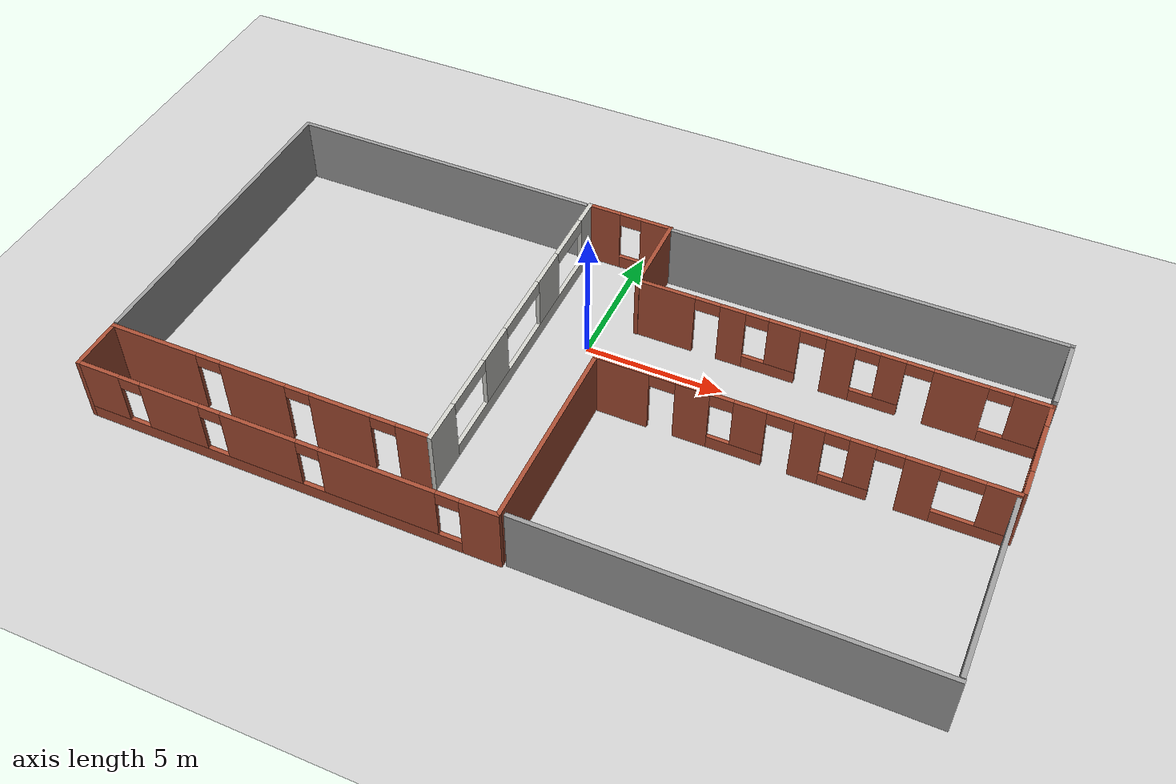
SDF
<sdf version="1.6">
 <world name="default">
  <light name="sun" type="directional">
   <pose>0 0 10 0 -0 0</pose>
   <diffuse>0.8 0.8 0.8 1</diffuse>
   <specular>0.1 0.1 0.1 1</specular>
   <attenuation>
    <range>1000</range>
    <constant>0.9</constant>
    <linear>0.01</linear>
    <quadratic>0.001</quadratic>
   </attenuation>
   <direction>-0.5 0.5 -1</direction>
  </light>
  <model name="ground_plane">
   <static>1</static>
   <link name="link">
    <collision name="collision">
     <geometry><plane><normal>0 0 1</normal><size>100 100</size></plane></geometry>
     <surface><friction><ode><mu>100</mu><mu2>50</mu2></ode></friction></surface>
    </collision>
    <visual name="visual">
     <cast_shadows>0</cast_shadows>
     <geometry><plane><normal>0 0 1</normal><size>100 100</size></plane></geometry>
     <material>
      <script><uri>file://media/materials/scripts/gazebo.material</uri><name>Gazebo/Grey</name></script>
     </material>
    </visual>
   </link>
  </model>
  <gravity>0 0 -9.8</gravity>
  <magnetic_field>6e-06 2.3e-05 -4.2e-05</magnetic_field>
  <atmosphere type="adiabatic"/>
  <physics name="default_physics" default="0" type="ode">
   <max_step_size>0.001</max_step_size>
   <real_time_factor>1</real_time_factor>
   <real_time_update_rate>1000</real_time_update_rate>
  </physics>
  <scene><ambient>0.4 0.4 0.4 1</ambient><background>0.7 0.7 0.7 1</background><shadows>1</shadows></scene>
  <spherical_coordinates>
   <surface_model>EARTH_WGS84</surface_model>
   <latitude_deg>0</latitude_deg>
   <longitude_deg>0</longitude_deg>
   <elevation>0</elevation>
   <heading_deg>0</heading_deg>
  </spherical_coordinates>
  <model name="zoulang1.0">
   <pose>0.805899 -2.55323 0 0 -0 0</pose>
   <link name="Wall_13">
    <collision name="Wall_13_Collision">
     <geometry><box><size>7.25 0.15 2.5</size></box></geometry>
     <pose>0 0 1.25 0 -0 0</pose>
    </collision>
    <visual name="Wall_13_Visual">
     <pose>0 0 1.25 0 -0 0</pose>
     <geometry><box><size>7.25 0.15 2.5</size></box></geometry>
     <material>
      <script><uri>file://media/materials/scripts/gazebo.material</uri><name>Gazebo/Bricks</name></script>
      <ambient>1 1 1 1</ambient>
     </material>
    </visual>
    <pose>0.563435 -3.425 0 0 0 -1.5708</pose>
   </link>
   <link name="Wall_14">
    <pose>-6.98657 -6.975 0 0 -0 3.14159</pose>
    <visual name="Wall_14_Visual_0">
     <pose>-6.94822 0 1.25 0 -0 0</pose>
     <geometry><box><size>1.35357 0.15 2.5</size></box></geometry>
     <material>
      <script><uri>file://media/materials/scripts/gazebo.material</uri><name>Gazebo/Bricks</name></script>
      <ambient>0.996078 0.47451 0.0196078 1</ambient>
     </material>
    </visual>
    <collision name="Wall_14_Collision_0">
     <geometry><box><size>1.35357 0.15 2.5</size></box></geometry>
     <pose>-6.94822 0 1.25 0 -0 0</pose>
    </collision>
    <visual name="Wall_14_Visual_1">
     <pose>0.676784 0 0.25 0 -0 0</pose>
     <geometry><box><size>13.8964 0.15 0.5</size></box></geometry>
     <material>
      <script><uri>file://media/materials/scripts/gazebo.material</uri><name>Gazebo/Bricks</name></script>
      <ambient>0.996078 0.47451 0.0196078 1</ambient>
     </material>
    </visual>
    <collision name="Wall_14_Collision_1">
     <geometry><box><size>13.8964 0.15 0.5</size></box></geometry>
     <pose>0.676784 0 0.25 0 -0 0</pose>
    </collision>
    <visual name="Wall_14_Visual_2">
     <pose>-3.4441 0 1.5 0 -0 0</pose>
     <geometry><box><size>4.05467 0.15 2</size></box></geometry>
     <material>
      <script><uri>file://media/materials/scripts/gazebo.material</uri><name>Gazebo/Bricks</name></script>
      <ambient>0.996078 0.47451 0.0196078 1</ambient>
     </material>
    </visual>
    <collision name="Wall_14_Collision_2">
     <geometry><box><size>4.05467 0.15 2</size></box></geometry>
     <pose>-3.4441 0 1.5 0 -0 0</pose>
    </collision>
    <visual name="Wall_14_Visual_3">
     <pose>0.763283 0 1.5 0 -0 0</pose>
     <geometry><box><size>2.76009 0.15 2</size></box></geometry>
     <material>
      <script><uri>file://media/materials/scripts/gazebo.material</uri><name>Gazebo/Bricks</name></script>
      <ambient>0.996078 0.47451 0.0196078 1</ambient>
     </material>
    </visual>
    <collision name="Wall_14_Collision_3">
     <geometry><box><size>2.76009 0.15 2</size></box></geometry>
     <pose>0.763283 0 1.5 0 -0 0</pose>
    </collision>
    <visual name="Wall_14_Visual_4">
     <pose>4.06041 0 1.5 0 -0 0</pose>
     <geometry><box><size>2.23417 0.15 2</size></box></geometry>
     <material>
      <script><uri>file://media/materials/scripts/gazebo.material</uri><name>Gazebo/Bricks</name></script>
      <ambient>0.996078 0.47451 0.0196078 1</ambient>
     </material>
    </visual>
    <collision name="Wall_14_Collision_4">
     <geometry><box><size>2.23417 0.15 2</size></box></geometry>
     <pose>4.06041 0 1.5 0 -0 0</pose>
    </collision>
    <visual name="Wall_14_Visual_5">
     <pose>6.80125 0 1.5 0 -0 0</pose>
     <geometry><box><size>1.6475 0.15 2</size></box></geometry>
     <material>
      <script><uri>file://media/materials/scripts/gazebo.material</uri><name>Gazebo/Bricks</name></script>
      <ambient>0.996078 0.47451 0.0196078 1</ambient>
     </material>
    </visual>
    <collision name="Wall_14_Collision_5">
     <geometry><box><size>1.6475 0.15 2</size></box></geometry>
     <pose>6.80125 0 1.5 0 -0 0</pose>
    </collision>
    <visual name="Wall_14_Visual_6">
     <pose>-5.87143 0 2.25 0 -0 0</pose>
     <geometry><box><size>0.8 0.15 0.5</size></box></geometry>
     <material>
      <script><uri>file://media/materials/scripts/gazebo.material</uri><name>Gazebo/Bricks</name></script>
      <ambient>0.996078 0.47451 0.0196078 1</ambient>
     </material>
    </visual>
    <collision name="Wall_14_Collision_6">
     <geometry><box><size>0.8 0.15 0.5</size></box></geometry>
     <pose>-5.87143 0 2.25 0 -0 0</pose>
    </collision>
    <visual name="Wall_14_Visual_7">
     <pose>-1.01676 0 2.25 0 -0 0</pose>
     <geometry><box><size>0.8 0.15 0.5</size></box></geometry>
     <material>
      <script><uri>file://media/materials/scripts/gazebo.material</uri><name>Gazebo/Bricks</name></script>
      <ambient>0.996078 0.47451 0.0196078 1</ambient>
     </material>
    </visual>
    <collision name="Wall_14_Collision_7">
     <geometry><box><size>0.8 0.15 0.5</size></box></geometry>
     <pose>-1.01676 0 2.25 0 -0 0</pose>
    </collision>
    <visual name="Wall_14_Visual_8">
     <pose>2.54333 0 2.25 0 -0 0</pose>
     <geometry><box><size>0.8 0.15 0.5</size></box></geometry>
     <material>
      <script><uri>file://media/materials/scripts/gazebo.material</uri><name>Gazebo/Bricks</name></script>
      <ambient>0.996078 0.47451 0.0196078 1</ambient>
     </material>
    </visual>
    <collision name="Wall_14_Collision_8">
     <geometry><box><size>0.8 0.15 0.5</size></box></geometry>
     <pose>2.54333 0 2.25 0 -0 0</pose>
    </collision>
    <visual name="Wall_14_Visual_9">
     <pose>5.5775 0 2.25 0 -0 0</pose>
     <geometry><box><size>0.8 0.15 0.5</size></box></geometry>
     <material>
      <script><uri>file://media/materials/scripts/gazebo.material</uri><name>Gazebo/Bricks</name></script>
      <ambient>0.996078 0.47451 0.0196078 1</ambient>
     </material>
    </visual>
    <collision name="Wall_14_Collision_9">
     <geometry><box><size>0.8 0.15 0.5</size></box></geometry>
     <pose>5.5775 0 2.25 0 -0 0</pose>
    </collision>
   </link>
   <link name="Wall_15">
    <collision name="Wall_15_Collision">
     <geometry><box><size>2 0.15 2.5</size></box></geometry>
     <pose>0 0 1.25 0 -0 0</pose>
    </collision>
    <visual name="Wall_15_Visual">
     <pose>0 0 1.25 0 -0 0</pose>
     <geometry><box><size>2 0.15 2.5</size></box></geometry>
     <material>
      <script><uri>file://media/materials/scripts/gazebo.material</uri><name>Gazebo/Bricks</name></script>
      <ambient>1 1 1 1</ambient>
     </material>
    </visual>
    <pose>-14.5366 -6.05 0 0 -0 1.5708</pose>
   </link>
   <link name="Wall_16">
    <pose>-8.61157 -5.125 0 0 -0 0</pose>
    <visual name="Wall_16_Visual_0">
     <pose>-4.33145 0 1.25 0 -0 0</pose>
     <geometry><box><size>3.33709 0.15 2.5</size></box></geometry>
     <material>
      <script><uri>file://media/materials/scripts/gazebo.material</uri><name>Gazebo/Bricks</name></script>
      <ambient>1 1 1 1</ambient>
     </material>
    </visual>
    <collision name="Wall_16_Collision_0">
     <geometry><box><size>3.33709 0.15 2.5</size></box></geometry>
     <pose>-4.33145 0 1.25 0 -0 0</pose>
    </collision>
    <visual name="Wall_16_Visual_1">
     <pose>-0.534 0 1.25 0 -0 0</pose>
     <geometry><box><size>2.45781 0.15 2.5</size></box></geometry>
     <material>
      <script><uri>file://media/materials/scripts/gazebo.material</uri><name>Gazebo/Bricks</name></script>
      <ambient>1 1 1 1</ambient>
     </material>
    </visual>
    <collision name="Wall_16_Collision_1">
     <geometry><box><size>2.45781 0.15 2.5</size></box></geometry>
     <pose>-0.534 0 1.25 0 -0 0</pose>
    </collision>
    <visual name="Wall_16_Visual_2">
     <pose>2.70245 0 1.25 0 -0 0</pose>
     <geometry><box><size>2.21508 0.15 2.5</size></box></geometry>
     <material>
      <script><uri>file://media/materials/scripts/gazebo.material</uri><name>Gazebo/Bricks</name></script>
      <ambient>1 1 1 1</ambient>
     </material>
    </visual>
    <collision name="Wall_16_Collision_2">
     <geometry><box><size>2.21508 0.15 2.5</size></box></geometry>
     <pose>2.70245 0 1.25 0 -0 0</pose>
    </collision>
    <visual name="Wall_16_Visual_3">
     <pose>5.35499 0 1.25 0 -0 0</pose>
     <geometry><box><size>1.29001 0.15 2.5</size></box></geometry>
     <material>
      <script><uri>file://media/materials/scripts/gazebo.material</uri><name>Gazebo/Bricks</name></script>
      <ambient>1 1 1 1</ambient>
     </material>
    </visual>
    <collision name="Wall_16_Collision_3">
     <geometry><box><size>1.29001 0.15 2.5</size></box></geometry>
     <pose>5.35499 0 1.25 0 -0 0</pose>
    </collision>
    <visual name="Wall_16_Visual_4">
     <pose>-2.21291 0 2.25 0 -0 0</pose>
     <geometry><box><size>0.9 0.15 0.5</size></box></geometry>
     <material>
      <script><uri>file://media/materials/scripts/gazebo.material</uri><name>Gazebo/Bricks</name></script>
      <ambient>1 1 1 1</ambient>
     </material>
    </visual>
    <collision name="Wall_16_Collision_4">
     <geometry><box><size>0.9 0.15 0.5</size></box></geometry>
     <pose>-2.21291 0 2.25 0 -0 0</pose>
    </collision>
    <visual name="Wall_16_Visual_5">
     <pose>1.14491 0 2.25 0 -0 0</pose>
     <geometry><box><size>0.9 0.15 0.5</size></box></geometry>
     <material>
      <script><uri>file://media/materials/scripts/gazebo.material</uri><name>Gazebo/Bricks</name></script>
      <ambient>1 1 1 1</ambient>
     </material>
    </visual>
    <collision name="Wall_16_Collision_5">
     <geometry><box><size>0.9 0.15 0.5</size></box></geometry>
     <pose>1.14491 0 2.25 0 -0 0</pose>
    </collision>
    <visual name="Wall_16_Visual_6">
     <pose>4.25999 0 2.25 0 -0 0</pose>
     <geometry><box><size>0.9 0.15 0.5</size></box></geometry>
     <material>
      <script><uri>file://media/materials/scripts/gazebo.material</uri><name>Gazebo/Bricks</name></script>
      <ambient>1 1 1 1</ambient>
     </material>
    </visual>
    <collision name="Wall_16_Collision_6">
     <geometry><box><size>0.9 0.15 0.5</size></box></geometry>
     <pose>4.25999 0 2.25 0 -0 0</pose>
    </collision>
   </link>
   <link name="Wall_17">
    <pose>-2.68656 0.925 0 0 -0 1.5708</pose>
    <visual name="Wall_17_Visual_0">
     <pose>-5.33907 0 1.25 0 -0 0</pose>
     <geometry><box><size>1.57187 0.15 2.5</size></box></geometry>
     <material>
      <script><uri>file://media/materials/scripts/gazebo.material</uri><name>Gazebo/CeilingTiled</name></script>
      <ambient>1 1 1 1</ambient>
     </material>
    </visual>
    <collision name="Wall_17_Collision_0">
     <geometry><box><size>1.57187 0.15 2.5</size></box></geometry>
     <pose>-5.33907 0 1.25 0 -0 0</pose>
    </collision>
    <visual name="Wall_17_Visual_1">
     <pose>0.785934 0 0.25 0 -0 0</pose>
     <geometry><box><size>10.6781 0.15 0.5</size></box></geometry>
     <material>
      <script><uri>file://media/materials/scripts/gazebo.material</uri><name>Gazebo/CeilingTiled</name></script>
      <ambient>1 1 1 1</ambient>
     </material>
    </visual>
    <collision name="Wall_17_Collision_1">
     <geometry><box><size>10.6781 0.15 0.5</size></box></geometry>
     <pose>0.785934 0 0.25 0 -0 0</pose>
    </collision>
    <visual name="Wall_17_Visual_2">
     <pose>-1.65476 0 1.5 0 -0 0</pose>
     <geometry><box><size>1.60674 0.15 2</size></box></geometry>
     <material>
      <script><uri>file://media/materials/scripts/gazebo.material</uri><name>Gazebo/CeilingTiled</name></script>
      <ambient>1 1 1 1</ambient>
     </material>
    </visual>
    <collision name="Wall_17_Collision_2">
     <geometry><box><size>1.60674 0.15 2</size></box></geometry>
     <pose>-1.65476 0 1.5 0 -0 0</pose>
    </collision>
    <visual name="Wall_17_Visual_3">
     <pose>2.39079 0 1.5 0 -0 0</pose>
     <geometry><box><size>1.56637 0.15 2</size></box></geometry>
     <material>
      <script><uri>file://media/materials/scripts/gazebo.material</uri><name>Gazebo/CeilingTiled</name></script>
      <ambient>1 1 1 1</ambient>
     </material>
    </visual>
    <collision name="Wall_17_Collision_3">
     <geometry><box><size>1.56637 0.15 2</size></box></geometry>
     <pose>2.39079 0 1.5 0 -0 0</pose>
    </collision>
    <visual name="Wall_17_Visual_4">
     <pose>5.61599 0 1.5 0 -0 0</pose>
     <geometry><box><size>1.01803 0.15 2</size></box></geometry>
     <material>
      <script><uri>file://media/materials/scripts/gazebo.material</uri><name>Gazebo/CeilingTiled</name></script>
      <ambient>1 1 1 1</ambient>
     </material>
    </visual>
    <collision name="Wall_17_Collision_4">
     <geometry><box><size>1.01803 0.15 2</size></box></geometry>
     <pose>5.61599 0 1.5 0 -0 0</pose>
    </collision>
    <visual name="Wall_17_Visual_5">
     <pose>-3.50563 0 2.25 0 -0 0</pose>
     <geometry><box><size>2.095 0.15 0.5</size></box></geometry>
     <material>
      <script><uri>file://media/materials/scripts/gazebo.material</uri><name>Gazebo/CeilingTiled</name></script>
      <ambient>1 1 1 1</ambient>
     </material>
    </visual>
    <collision name="Wall_17_Collision_5">
     <geometry><box><size>2.095 0.15 0.5</size></box></geometry>
     <pose>-3.50563 0 2.25 0 -0 0</pose>
    </collision>
    <visual name="Wall_17_Visual_6">
     <pose>0.378104 0 2.25 0 -0 0</pose>
     <geometry><box><size>2.459 0.15 0.5</size></box></geometry>
     <material>
      <script><uri>file://media/materials/scripts/gazebo.material</uri><name>Gazebo/CeilingTiled</name></script>
      <ambient>1 1 1 1</ambient>
     </material>
    </visual>
    <collision name="Wall_17_Collision_6">
     <geometry><box><size>2.459 0.15 0.5</size></box></geometry>
     <pose>0.378104 0 2.25 0 -0 0</pose>
    </collision>
    <visual name="Wall_17_Visual_7">
     <pose>4.14047 0 2.25 0 -0 0</pose>
     <geometry><box><size>1.933 0.15 0.5</size></box></geometry>
     <material>
      <script><uri>file://media/materials/scripts/gazebo.material</uri><name>Gazebo/CeilingTiled</name></script>
      <ambient>1 1 1 1</ambient>
     </material>
    </visual>
    <collision name="Wall_17_Collision_7">
     <geometry><box><size>1.933 0.15 0.5</size></box></geometry>
     <pose>4.14047 0 2.25 0 -0 0</pose>
    </collision>
   </link>
   <link name="Wall_18">
    <pose>-1.13657 6.975 0 0 -0 0</pose>
    <visual name="Wall_18_Visual_0">
     <pose>-0.990487 0 1.25 0 -0 0</pose>
     <geometry><box><size>1.26903 0.15 2.5</size></box></geometry>
     <material>
      <script><uri>file://media/materials/scripts/gazebo.material</uri><name>Gazebo/Bricks</name></script>
      <ambient>1 1 1 1</ambient>
     </material>
    </visual>
    <collision name="Wall_18_Collision_0">
     <geometry><box><size>1.26903 0.15 2.5</size></box></geometry>
     <pose>-0.990487 0 1.25 0 -0 0</pose>
    </collision>
    <visual name="Wall_18_Visual_1">
     <pose>0.634513 0 0.25 0 -0 0</pose>
     <geometry><box><size>1.98097 0.15 0.5</size></box></geometry>
     <material>
      <script><uri>file://media/materials/scripts/gazebo.material</uri><name>Gazebo/Bricks</name></script>
      <ambient>1 1 1 1</ambient>
     </material>
    </visual>
    <collision name="Wall_18_Collision_1">
     <geometry><box><size>1.98097 0.15 0.5</size></box></geometry>
     <pose>0.634513 0 0.25 0 -0 0</pose>
    </collision>
    <visual name="Wall_18_Visual_2">
     <pose>1.03451 0 1.5 0 -0 0</pose>
     <geometry><box><size>1.18097 0.15 2</size></box></geometry>
     <material>
      <script><uri>file://media/materials/scripts/gazebo.material</uri><name>Gazebo/Bricks</name></script>
      <ambient>1 1 1 1</ambient>
     </material>
    </visual>
    <collision name="Wall_18_Collision_2">
     <geometry><box><size>1.18097 0.15 2</size></box></geometry>
     <pose>1.03451 0 1.5 0 -0 0</pose>
    </collision>
    <visual name="Wall_18_Visual_3">
     <pose>0.044026 0 2.25 0 -0 0</pose>
     <geometry><box><size>0.8 0.15 0.5</size></box></geometry>
     <material>
      <script><uri>file://media/materials/scripts/gazebo.material</uri><name>Gazebo/Bricks</name></script>
      <ambient>1 1 1 1</ambient>
     </material>
    </visual>
    <collision name="Wall_18_Collision_3">
     <geometry><box><size>0.8 0.15 0.5</size></box></geometry>
     <pose>0.044026 0 2.25 0 -0 0</pose>
    </collision>
   </link>
   <link name="Wall_19">
    <collision name="Wall_19_Collision">
     <geometry><box><size>3.11565 0.15 2.5</size></box></geometry>
     <pose>0 0 1.25 0 -0 0</pose>
    </collision>
    <visual name="Wall_19_Visual">
     <pose>0 0 1.25 0 -0 0</pose>
     <geometry><box><size>3.11565 0.15 2.5</size></box></geometry>
     <material>
      <script><uri>file://media/materials/scripts/gazebo.material</uri><name>Gazebo/Bricks</name></script>
      <ambient>1 1 1 1</ambient>
     </material>
    </visual>
    <pose>0.413435 5.49217 0 0 0 -1.5708</pose>
   </link>
   <link name="Wall_20">
    <pose>7.48657 4.03248 0 0 -0 0</pose>
    <visual name="Wall_20_Visual_0">
     <pose>-6.04901 0 1.25 0 -0 0</pose>
     <geometry><box><size>2.15197 0.15 2.5</size></box></geometry>
     <material>
      <script><uri>file://media/materials/scripts/gazebo.material</uri><name>Gazebo/Bricks</name></script>
      <ambient>1 1 1 1</ambient>
     </material>
    </visual>
    <collision name="Wall_20_Collision_0">
     <geometry><box><size>2.15197 0.15 2.5</size></box></geometry>
     <pose>-6.04901 0 1.25 0 -0 0</pose>
    </collision>
    <visual name="Wall_20_Visual_1">
     <pose>-3.61407 0 1.25 0 -0 0</pose>
     <geometry><box><size>0.917909 0.15 2.5</size></box></geometry>
     <material>
      <script><uri>file://media/materials/scripts/gazebo.material</uri><name>Gazebo/Bricks</name></script>
      <ambient>1 1 1 1</ambient>
     </material>
    </visual>
    <collision name="Wall_20_Collision_1">
     <geometry><box><size>0.917909 0.15 2.5</size></box></geometry>
     <pose>-3.61407 0 1.25 0 -0 0</pose>
    </collision>
    <visual name="Wall_20_Visual_2">
     <pose>0.154363 0 1.25 0 -0 0</pose>
     <geometry><box><size>1.01096 0.15 2.5</size></box></geometry>
     <material>
      <script><uri>file://media/materials/scripts/gazebo.material</uri><name>Gazebo/Bricks</name></script>
      <ambient>1 1 1 1</ambient>
     </material>
    </visual>
    <collision name="Wall_20_Collision_2">
     <geometry><box><size>1.01096 0.15 2.5</size></box></geometry>
     <pose>0.154363 0 1.25 0 -0 0</pose>
    </collision>
    <visual name="Wall_20_Visual_3">
     <pose>4.13216 0 1.25 0 -0 0</pose>
     <geometry><box><size>1.80186 0.15 2.5</size></box></geometry>
     <material>
      <script><uri>file://media/materials/scripts/gazebo.material</uri><name>Gazebo/Bricks</name></script>
      <ambient>1 1 1 1</ambient>
     </material>
    </visual>
    <collision name="Wall_20_Collision_3">
     <geometry><box><size>1.80186 0.15 2.5</size></box></geometry>
     <pose>4.13216 0 1.25 0 -0 0</pose>
    </collision>
    <visual name="Wall_20_Visual_4">
     <pose>-2.20312 0 0.25 0 -0 0</pose>
     <geometry><box><size>1.904 0.15 0.5</size></box></geometry>
     <material>
      <script><uri>file://media/materials/scripts/gazebo.material</uri><name>Gazebo/Bricks</name></script>
      <ambient>1 1 1 1</ambient>
     </material>
    </visual>
    <collision name="Wall_20_Collision_4">
     <geometry><box><size>1.904 0.15 0.5</size></box></geometry>
     <pose>-2.20312 0 0.25 0 -0 0</pose>
    </collision>
    <visual name="Wall_20_Visual_5">
     <pose>1.49553 0 0.25 0 -0 0</pose>
     <geometry><box><size>1.67138 0.15 0.5</size></box></geometry>
     <material>
      <script><uri>file://media/materials/scripts/gazebo.material</uri><name>Gazebo/Bricks</name></script>
      <ambient>1 1 1 1</ambient>
     </material>
    </visual>
    <collision name="Wall_20_Collision_5">
     <geometry><box><size>1.67138 0.15 0.5</size></box></geometry>
     <pose>1.49553 0 0.25 0 -0 0</pose>
    </collision>
    <visual name="Wall_20_Visual_6">
     <pose>6.07904 0 0.25 0 -0 0</pose>
     <geometry><box><size>2.09191 0.15 0.5</size></box></geometry>
     <material>
      <script><uri>file://media/materials/scripts/gazebo.material</uri><name>Gazebo/Bricks</name></script>
      <ambient>1 1 1 1</ambient>
     </material>
    </visual>
    <collision name="Wall_20_Collision_6">
     <geometry><box><size>2.09191 0.15 0.5</size></box></geometry>
     <pose>6.07904 0 0.25 0 -0 0</pose>
    </collision>
    <visual name="Wall_20_Visual_7">
     <pose>-1.80312 0 1.5 0 -0 0</pose>
     <geometry><box><size>1.104 0.15 2</size></box></geometry>
     <material>
      <script><uri>file://media/materials/scripts/gazebo.material</uri><name>Gazebo/Bricks</name></script>
      <ambient>1 1 1 1</ambient>
     </material>
    </visual>
    <collision name="Wall_20_Collision_7">
     <geometry><box><size>1.104 0.15 2</size></box></geometry>
     <pose>-1.80312 0 1.5 0 -0 0</pose>
    </collision>
    <visual name="Wall_20_Visual_8">
     <pose>-1.80312 0 1.5 0 -0 0</pose>
     <geometry><box><size>1.104 0.15 2</size></box></geometry>
     <material>
      <script><uri>file://media/materials/scripts/gazebo.material</uri><name>Gazebo/Bricks</name></script>
      <ambient>1 1 1 1</ambient>
     </material>
    </visual>
    <collision name="Wall_20_Collision_8">
     <geometry><box><size>1.104 0.15 2</size></box></geometry>
     <pose>-1.80312 0 1.5 0 -0 0</pose>
    </collision>
    <visual name="Wall_20_Visual_9">
     <pose>1.89553 0 1.5 0 -0 0</pose>
     <geometry><box><size>0.871385 0.15 2</size></box></geometry>
     <material>
      <script><uri>file://media/materials/scripts/gazebo.material</uri><name>Gazebo/Bricks</name></script>
      <ambient>1 1 1 1</ambient>
     </material>
    </visual>
    <collision name="Wall_20_Collision_9">
     <geometry><box><size>0.871385 0.15 2</size></box></geometry>
     <pose>1.89553 0 1.5 0 -0 0</pose>
    </collision>
    <visual name="Wall_20_Visual_10">
     <pose>1.89553 0 1.5 0 -0 0</pose>
     <geometry><box><size>0.871385 0.15 2</size></box></geometry>
     <material>
      <script><uri>file://media/materials/scripts/gazebo.material</uri><name>Gazebo/Bricks</name></script>
      <ambient>1 1 1 1</ambient>
     </material>
    </visual>
    <collision name="Wall_20_Collision_10">
     <geometry><box><size>0.871385 0.15 2</size></box></geometry>
     <pose>1.89553 0 1.5 0 -0 0</pose>
    </collision>
    <visual name="Wall_20_Visual_11">
     <pose>6.47905 0 1.5 0 -0 0</pose>
     <geometry><box><size>1.29191 0.15 2</size></box></geometry>
     <material>
      <script><uri>file://media/materials/scripts/gazebo.material</uri><name>Gazebo/Bricks</name></script>
      <ambient>1 1 1 1</ambient>
     </material>
    </visual>
    <collision name="Wall_20_Collision_11">
     <geometry><box><size>1.29191 0.15 2</size></box></geometry>
     <pose>6.47905 0 1.5 0 -0 0</pose>
    </collision>
    <visual name="Wall_20_Visual_12">
     <pose>-4.52303 0 2.25 0 -0 0</pose>
     <geometry><box><size>0.9 0.15 0.5</size></box></geometry>
     <material>
      <script><uri>file://media/materials/scripts/gazebo.material</uri><name>Gazebo/Bricks</name></script>
      <ambient>1 1 1 1</ambient>
     </material>
    </visual>
    <collision name="Wall_20_Collision_12">
     <geometry><box><size>0.9 0.15 0.5</size></box></geometry>
     <pose>-4.52303 0 2.25 0 -0 0</pose>
    </collision>
    <visual name="Wall_20_Visual_13">
     <pose>-2.75512 0 2.25 0 -0 0</pose>
     <geometry><box><size>0.8 0.15 0.5</size></box></geometry>
     <material>
      <script><uri>file://media/materials/scripts/gazebo.material</uri><name>Gazebo/Bricks</name></script>
      <ambient>1 1 1 1</ambient>
     </material>
    </visual>
    <collision name="Wall_20_Collision_13">
     <geometry><box><size>0.8 0.15 0.5</size></box></geometry>
     <pose>-2.75512 0 2.25 0 -0 0</pose>
    </collision>
    <visual name="Wall_20_Visual_14">
     <pose>1.05984 0 2.25 0 -0 0</pose>
     <geometry><box><size>0.8 0.15 0.5</size></box></geometry>
     <material>
      <script><uri>file://media/materials/scripts/gazebo.material</uri><name>Gazebo/Bricks</name></script>
      <ambient>1 1 1 1</ambient>
     </material>
    </visual>
    <collision name="Wall_20_Collision_14">
     <geometry><box><size>0.8 0.15 0.5</size></box></geometry>
     <pose>1.05984 0 2.25 0 -0 0</pose>
    </collision>
    <visual name="Wall_20_Visual_15">
     <pose>5.43309 0 2.25 0 -0 0</pose>
     <geometry><box><size>0.8 0.15 0.5</size></box></geometry>
     <material>
      <script><uri>file://media/materials/scripts/gazebo.material</uri><name>Gazebo/Bricks</name></script>
      <ambient>1 1 1 1</ambient>
     </material>
    </visual>
    <collision name="Wall_20_Collision_15">
     <geometry><box><size>0.8 0.15 0.5</size></box></geometry>
     <pose>5.43309 0 2.25 0 -0 0</pose>
    </collision>
    <visual name="Wall_20_Visual_16">
     <pose>-0.801116 0 2.25 0 -0 0</pose>
     <geometry><box><size>0.9 0.15 0.5</size></box></geometry>
     <material>
      <script><uri>file://media/materials/scripts/gazebo.material</uri><name>Gazebo/Bricks</name></script>
      <ambient>1 1 1 1</ambient>
     </material>
    </visual>
    <collision name="Wall_20_Collision_16">
     <geometry><box><size>0.9 0.15 0.5</size></box></geometry>
     <pose>-0.801116 0 2.25 0 -0 0</pose>
    </collision>
    <visual name="Wall_20_Visual_17">
     <pose>-0.801116 0 2.25 0 -0 0</pose>
     <geometry><box><size>0.9 0.15 0.5</size></box></geometry>
     <material>
      <script><uri>file://media/materials/scripts/gazebo.material</uri><name>Gazebo/Bricks</name></script>
      <ambient>1 1 1 1</ambient>
     </material>
    </visual>
    <collision name="Wall_20_Collision_17">
     <geometry><box><size>0.9 0.15 0.5</size></box></geometry>
     <pose>-0.801116 0 2.25 0 -0 0</pose>
    </collision>
    <visual name="Wall_20_Visual_18">
     <pose>2.78123 0 2.25 0 -0 0</pose>
     <geometry><box><size>0.9 0.15 0.5</size></box></geometry>
     <material>
      <script><uri>file://media/materials/scripts/gazebo.material</uri><name>Gazebo/Bricks</name></script>
      <ambient>1 1 1 1</ambient>
     </material>
    </visual>
    <collision name="Wall_20_Collision_18">
     <geometry><box><size>0.9 0.15 0.5</size></box></geometry>
     <pose>2.78123 0 2.25 0 -0 0</pose>
    </collision>
    <visual name="Wall_20_Visual_19">
     <pose>2.78123 0 2.25 0 -0 0</pose>
     <geometry><box><size>0.9 0.15 0.5</size></box></geometry>
     <material>
      <script><uri>file://media/materials/scripts/gazebo.material</uri><name>Gazebo/Bricks</name></script>
      <ambient>1 1 1 1</ambient>
     </material>
    </visual>
    <collision name="Wall_20_Collision_19">
     <geometry><box><size>0.9 0.15 0.5</size></box></geometry>
     <pose>2.78123 0 2.25 0 -0 0</pose>
    </collision>
   </link>
   <link name="Wall_21">
    <pose>14.5134 2.13217 0 0 0 -1.5708</pose>
    <visual name="Wall_21_Visual_0">
     <pose>-1.4783 0 1.25 0 -0 0</pose>
     <geometry><box><size>0.947755 0.15 2.5</size></box></geometry>
     <material>
      <script><uri>file://media/materials/scripts/gazebo.material</uri><name>Gazebo/Bricks</name></script>
      <ambient>1 1 1 1</ambient>
     </material>
    </visual>
    <collision name="Wall_21_Collision_0">
     <geometry><box><size>0.947755 0.15 2.5</size></box></geometry>
     <pose>-1.4783 0 1.25 0 -0 0</pose>
    </collision>
    <visual name="Wall_21_Visual_1">
     <pose>0.473877 0 0.25 0 -0 0</pose>
     <geometry><box><size>2.95659 0.15 0.5</size></box></geometry>
     <material>
      <script><uri>file://media/materials/scripts/gazebo.material</uri><name>Gazebo/Bricks</name></script>
      <ambient>1 1 1 1</ambient>
     </material>
    </visual>
    <collision name="Wall_21_Collision_1">
     <geometry><box><size>2.95659 0.15 0.5</size></box></geometry>
     <pose>0.473877 0 0.25 0 -0 0</pose>
    </collision>
    <visual name="Wall_21_Visual_2">
     <pose>1.46371 0 1.5 0 -0 0</pose>
     <geometry><box><size>0.976931 0.15 2</size></box></geometry>
     <material>
      <script><uri>file://media/materials/scripts/gazebo.material</uri><name>Gazebo/Bricks</name></script>
      <ambient>1 1 1 1</ambient>
     </material>
    </visual>
    <collision name="Wall_21_Collision_2">
     <geometry><box><size>0.976931 0.15 2</size></box></geometry>
     <pose>1.46371 0 1.5 0 -0 0</pose>
    </collision>
    <visual name="Wall_21_Visual_3">
     <pose>-0.014588 0 2.25 0 -0 0</pose>
     <geometry><box><size>1.97966 0.15 0.5</size></box></geometry>
     <material>
      <script><uri>file://media/materials/scripts/gazebo.material</uri><name>Gazebo/Bricks</name></script>
      <ambient>1 1 1 1</ambient>
     </material>
    </visual>
    <collision name="Wall_21_Collision_3">
     <geometry><box><size>1.97966 0.15 0.5</size></box></geometry>
     <pose>-0.014588 0 2.25 0 -0 0</pose>
    </collision>
   </link>
   <link name="Wall_25">
    <pose>7.48843 0.125 0 0 -0 0</pose>
    <visual name="Wall_25_Visual_0">
     <pose>-6.01578 0 1.25 0 -0 0</pose>
     <geometry><box><size>1.96844 0.15 2.5</size></box></geometry>
     <material>
      <script><uri>file://media/materials/scripts/gazebo.material</uri><name>Gazebo/Bricks</name></script>
      <ambient>1 1 1 1</ambient>
     </material>
    </visual>
    <collision name="Wall_25_Collision_0">
     <geometry><box><size>1.96844 0.15 2.5</size></box></geometry>
     <pose>-6.01578 0 1.25 0 -0 0</pose>
    </collision>
    <visual name="Wall_25_Visual_1">
     <pose>-3.54428 0 1.25 0 -0 0</pose>
     <geometry><box><size>1.17455 0.15 2.5</size></box></geometry>
     <material>
      <script><uri>file://media/materials/scripts/gazebo.material</uri><name>Gazebo/Bricks</name></script>
      <ambient>1 1 1 1</ambient>
     </material>
    </visual>
    <collision name="Wall_25_Collision_1">
     <geometry><box><size>1.17455 0.15 2.5</size></box></geometry>
     <pose>-3.54428 0 1.25 0 -0 0</pose>
    </collision>
    <visual name="Wall_25_Visual_2">
     <pose>0.346867 0 1.25 0 -0 0</pose>
     <geometry><box><size>0.999917 0.15 2.5</size></box></geometry>
     <material>
      <script><uri>file://media/materials/scripts/gazebo.material</uri><name>Gazebo/Bricks</name></script>
      <ambient>1 1 1 1</ambient>
     </material>
    </visual>
    <collision name="Wall_25_Collision_2">
     <geometry><box><size>0.999917 0.15 2.5</size></box></geometry>
     <pose>0.346867 0 1.25 0 -0 0</pose>
    </collision>
    <visual name="Wall_25_Visual_3">
     <pose>3.94052 0 1.25 0 -0 0</pose>
     <geometry><box><size>1.10926 0.15 2.5</size></box></geometry>
     <material>
      <script><uri>file://media/materials/scripts/gazebo.material</uri><name>Gazebo/Bricks</name></script>
      <ambient>1 1 1 1</ambient>
     </material>
    </visual>
    <collision name="Wall_25_Collision_3">
     <geometry><box><size>1.10926 0.15 2.5</size></box></geometry>
     <pose>3.94052 0 1.25 0 -0 0</pose>
    </collision>
    <visual name="Wall_25_Visual_4">
     <pose>-2.00505 0 0.25 0 -0 0</pose>
     <geometry><box><size>1.90391 0.15 0.5</size></box></geometry>
     <material>
      <script><uri>file://media/materials/scripts/gazebo.material</uri><name>Gazebo/Bricks</name></script>
      <ambient>1 1 1 1</ambient>
     </material>
    </visual>
    <collision name="Wall_25_Collision_4">
     <geometry><box><size>1.90391 0.15 0.5</size></box></geometry>
     <pose>-2.00505 0 0.25 0 -0 0</pose>
    </collision>
    <visual name="Wall_25_Visual_5">
     <pose>1.66636 0 0.25 0 -0 0</pose>
     <geometry><box><size>1.63907 0.15 0.5</size></box></geometry>
     <material>
      <script><uri>file://media/materials/scripts/gazebo.material</uri><name>Gazebo/Bricks</name></script>
      <ambient>1 1 1 1</ambient>
     </material>
    </visual>
    <collision name="Wall_25_Collision_5">
     <geometry><box><size>1.63907 0.15 0.5</size></box></geometry>
     <pose>1.66636 0 0.25 0 -0 0</pose>
    </collision>
    <visual name="Wall_25_Visual_6">
     <pose>5.74758 0 0.25 0 -0 0</pose>
     <geometry><box><size>2.50484 0.15 0.5</size></box></geometry>
     <material>
      <script><uri>file://media/materials/scripts/gazebo.material</uri><name>Gazebo/Bricks</name></script>
      <ambient>1 1 1 1</ambient>
     </material>
    </visual>
    <collision name="Wall_25_Collision_6">
     <geometry><box><size>2.50484 0.15 0.5</size></box></geometry>
     <pose>5.74758 0 0.25 0 -0 0</pose>
    </collision>
    <visual name="Wall_25_Visual_7">
     <pose>-1.60505 0 1.5 0 -0 0</pose>
     <geometry><box><size>1.10391 0.15 2</size></box></geometry>
     <material>
      <script><uri>file://media/materials/scripts/gazebo.material</uri><name>Gazebo/Bricks</name></script>
      <ambient>1 1 1 1</ambient>
     </material>
    </visual>
    <collision name="Wall_25_Collision_7">
     <geometry><box><size>1.10391 0.15 2</size></box></geometry>
     <pose>-1.60505 0 1.5 0 -0 0</pose>
    </collision>
    <visual name="Wall_25_Visual_8">
     <pose>-1.60505 0 1.5 0 -0 0</pose>
     <geometry><box><size>1.10391 0.15 2</size></box></geometry>
     <material>
      <script><uri>file://media/materials/scripts/gazebo.material</uri><name>Gazebo/Bricks</name></script>
      <ambient>1 1 1 1</ambient>
     </material>
    </visual>
    <collision name="Wall_25_Collision_8">
     <geometry><box><size>1.10391 0.15 2</size></box></geometry>
     <pose>-1.60505 0 1.5 0 -0 0</pose>
    </collision>
    <visual name="Wall_25_Visual_9">
     <pose>2.06636 0 1.5 0 -0 0</pose>
     <geometry><box><size>0.839066 0.15 2</size></box></geometry>
     <material>
      <script><uri>file://media/materials/scripts/gazebo.material</uri><name>Gazebo/Bricks</name></script>
      <ambient>1 1 1 1</ambient>
     </material>
    </visual>
    <collision name="Wall_25_Collision_9">
     <geometry><box><size>0.839066 0.15 2</size></box></geometry>
     <pose>2.06636 0 1.5 0 -0 0</pose>
    </collision>
    <visual name="Wall_25_Visual_10">
     <pose>2.06636 0 1.5 0 -0 0</pose>
     <geometry><box><size>0.839066 0.15 2</size></box></geometry>
     <material>
      <script><uri>file://media/materials/scripts/gazebo.material</uri><name>Gazebo/Bricks</name></script>
      <ambient>1 1 1 1</ambient>
     </material>
    </visual>
    <collision name="Wall_25_Collision_10">
     <geometry><box><size>0.839066 0.15 2</size></box></geometry>
     <pose>2.06636 0 1.5 0 -0 0</pose>
    </collision>
    <visual name="Wall_25_Visual_11">
     <pose>6.44008 0 1.5 0 -0 0</pose>
     <geometry><box><size>1.11984 0.15 2</size></box></geometry>
     <material>
      <script><uri>file://media/materials/scripts/gazebo.material</uri><name>Gazebo/Bricks</name></script>
      <ambient>1 1 1 1</ambient>
     </material>
    </visual>
    <collision name="Wall_25_Collision_11">
     <geometry><box><size>1.11984 0.15 2</size></box></geometry>
     <pose>6.44008 0 1.5 0 -0 0</pose>
    </collision>
    <visual name="Wall_25_Visual_12">
     <pose>-4.58156 0 2.25 0 -0 0</pose>
     <geometry><box><size>0.9 0.15 0.5</size></box></geometry>
     <material>
      <script><uri>file://media/materials/scripts/gazebo.material</uri><name>Gazebo/Bricks</name></script>
      <ambient>1 1 1 1</ambient>
     </material>
    </visual>
    <collision name="Wall_25_Collision_12">
     <geometry><box><size>0.9 0.15 0.5</size></box></geometry>
     <pose>-4.58156 0 2.25 0 -0 0</pose>
    </collision>
    <visual name="Wall_25_Visual_13">
     <pose>-2.557 0 2.25 0 -0 0</pose>
     <geometry><box><size>0.8 0.15 0.5</size></box></geometry>
     <material>
      <script><uri>file://media/materials/scripts/gazebo.material</uri><name>Gazebo/Bricks</name></script>
      <ambient>1 1 1 1</ambient>
     </material>
    </visual>
    <collision name="Wall_25_Collision_13">
     <geometry><box><size>0.8 0.15 0.5</size></box></geometry>
     <pose>-2.557 0 2.25 0 -0 0</pose>
    </collision>
    <visual name="Wall_25_Visual_14">
     <pose>1.24683 0 2.25 0 -0 0</pose>
     <geometry><box><size>0.8 0.15 0.5</size></box></geometry>
     <material>
      <script><uri>file://media/materials/scripts/gazebo.material</uri><name>Gazebo/Bricks</name></script>
      <ambient>1 1 1 1</ambient>
     </material>
    </visual>
    <collision name="Wall_25_Collision_14">
     <geometry><box><size>0.8 0.15 0.5</size></box></geometry>
     <pose>1.24683 0 2.25 0 -0 0</pose>
    </collision>
    <visual name="Wall_25_Visual_15">
     <pose>5.18766 0 2.25 0 -0 0</pose>
     <geometry><box><size>1.385 0.15 0.5</size></box></geometry>
     <material>
      <script><uri>file://media/materials/scripts/gazebo.material</uri><name>Gazebo/Bricks</name></script>
      <ambient>1 1 1 1</ambient>
     </material>
    </visual>
    <collision name="Wall_25_Collision_15">
     <geometry><box><size>1.385 0.15 0.5</size></box></geometry>
     <pose>5.18766 0 2.25 0 -0 0</pose>
    </collision>
    <visual name="Wall_25_Visual_16">
     <pose>-0.603091 0 2.25 0 -0 0</pose>
     <geometry><box><size>0.9 0.15 0.5</size></box></geometry>
     <material>
      <script><uri>file://media/materials/scripts/gazebo.material</uri><name>Gazebo/Bricks</name></script>
      <ambient>1 1 1 1</ambient>
     </material>
    </visual>
    <collision name="Wall_25_Collision_16">
     <geometry><box><size>0.9 0.15 0.5</size></box></geometry>
     <pose>-0.603091 0 2.25 0 -0 0</pose>
    </collision>
    <visual name="Wall_25_Visual_17">
     <pose>-0.603091 0 2.25 0 -0 0</pose>
     <geometry><box><size>0.9 0.15 0.5</size></box></geometry>
     <material>
      <script><uri>file://media/materials/scripts/gazebo.material</uri><name>Gazebo/Bricks</name></script>
      <ambient>1 1 1 1</ambient>
     </material>
    </visual>
    <collision name="Wall_25_Collision_17">
     <geometry><box><size>0.9 0.15 0.5</size></box></geometry>
     <pose>-0.603091 0 2.25 0 -0 0</pose>
    </collision>
    <visual name="Wall_25_Visual_18">
     <pose>2.93589 0 2.25 0 -0 0</pose>
     <geometry><box><size>0.9 0.15 0.5</size></box></geometry>
     <material>
      <script><uri>file://media/materials/scripts/gazebo.material</uri><name>Gazebo/Bricks</name></script>
      <ambient>1 1 1 1</ambient>
     </material>
    </visual>
    <collision name="Wall_25_Collision_18">
     <geometry><box><size>0.9 0.15 0.5</size></box></geometry>
     <pose>2.93589 0 2.25 0 -0 0</pose>
    </collision>
    <visual name="Wall_25_Visual_19">
     <pose>2.93589 0 2.25 0 -0 0</pose>
     <geometry><box><size>0.9 0.15 0.5</size></box></geometry>
     <material>
      <script><uri>file://media/materials/scripts/gazebo.material</uri><name>Gazebo/Bricks</name></script>
      <ambient>1 1 1 1</ambient>
     </material>
    </visual>
    <collision name="Wall_25_Collision_19">
     <geometry><box><size>0.9 0.15 0.5</size></box></geometry>
     <pose>2.93589 0 2.25 0 -0 0</pose>
    </collision>
   </link>
   <static>1</static>
  </model>
  <model name="1">
   <pose>0.807236 -2.51395 0 0 -0 0</pose>
   <link name="Wall_1">
    <collision name="Wall_1_Collision">
     <geometry><box><size>13.75 0.15 2.5</size></box></geometry>
     <pose>0 0 1.25 0 -0 0</pose>
    </collision>
    <visual name="Wall_1_Visual">
     <pose>0 0 1.25 0 -0 0</pose>
     <geometry><box><size>13.75 0.15 2.5</size></box></geometry>
     <material>
      <script><uri>file://media/materials/scripts/gazebo.material</uri><name>Gazebo/Grey</name></script>
      <ambient>1 1 1 1</ambient>
     </material>
    </visual>
    <pose>7.60712 -6.90935 0 0 -0 0</pose>
   </link>
   <link name="Wall_10">
    <collision name="Wall_10_Collision">
     <geometry><box><size>11.994 0.15 2.5</size></box></geometry>
     <pose>0 0 1.25 0 -0 0</pose>
    </collision>
    <visual name="Wall_10_Visual">
     <pose>0 0 1.25 0 -0 0</pose>
     <geometry><box><size>11.994 0.15 2.5</size></box></geometry>
     <material>
      <script><uri>file://media/materials/scripts/gazebo.material</uri><name>Gazebo/Grey</name></script>
      <ambient>1 1 1 1</ambient>
     </material>
    </visual>
    <pose>-14.5047 0.958628 0 0 0 -1.57828</pose>
   </link>
   <link name="Wall_3">
    <collision name="Wall_3_Collision">
     <geometry><box><size>6.75 0.15 2.5</size></box></geometry>
     <pose>0 0 1.25 0 -0 0</pose>
    </collision>
    <visual name="Wall_3_Visual">
     <pose>0 0 1.25 0 -0 0</pose>
     <geometry><box><size>6.75 0.15 2.5</size></box></geometry>
     <material>
      <script><uri>file://media/materials/scripts/gazebo.material</uri><name>Gazebo/Grey</name></script>
      <ambient>1 1 1 1</ambient>
     </material>
    </visual>
    <pose>14.385 -3.43601 0 0 -0 1.5708</pose>
   </link>
   <link name="Wall_6">
    <collision name="Wall_6_Collision">
     <geometry><box><size>2.75 0.15 2.5</size></box></geometry>
     <pose>0 0 1.25 0 -0 0</pose>
    </collision>
    <visual name="Wall_6_Visual">
     <pose>0 0 1.25 0 -0 0</pose>
     <geometry><box><size>2.75 0.15 2.5</size></box></geometry>
     <material>
      <script><uri>file://media/materials/scripts/gazebo.material</uri><name>Gazebo/Grey</name></script>
      <ambient>1 1 1 1</ambient>
     </material>
    </visual>
    <pose>14.5495 5.60917 0 0 -0 1.5708</pose>
   </link>
   <link name="Wall_7">
    <collision name="Wall_7_Collision">
     <geometry><box><size>14.1371 0.15 2.5</size></box></geometry>
     <pose>0 0 1.25 0 -0 0</pose>
    </collision>
    <visual name="Wall_7_Visual">
     <pose>0 0 1.25 0 -0 0</pose>
     <geometry><box><size>14.1371 0.15 2.5</size></box></geometry>
     <material>
      <script><uri>file://media/materials/scripts/gazebo.material</uri><name>Gazebo/Grey</name></script>
      <ambient>1 1 1 1</ambient>
     </material>
    </visual>
    <pose>7.55594 6.89205 0 0 0 -3.13914</pose>
   </link>
   <link name="Wall_9">
    <collision name="Wall_9_Collision">
     <geometry><box><size>11.75 0.15 2.5</size></box></geometry>
     <pose>0 0 1.25 0 -0 0</pose>
    </collision>
    <visual name="Wall_9_Visual">
     <pose>0 0 1.25 0 -0 0</pose>
     <geometry><box><size>11.75 0.15 2.5</size></box></geometry>
     <material>
      <script><uri>file://media/materials/scripts/gazebo.material</uri><name>Gazebo/Grey</name></script>
      <ambient>1 1 1 1</ambient>
     </material>
    </visual>
    <pose>-8.66038 6.88048 0 0 -0 3.14159</pose>
   </link>
   <static>1</static>
  </model>
 </world>
</sdf>
